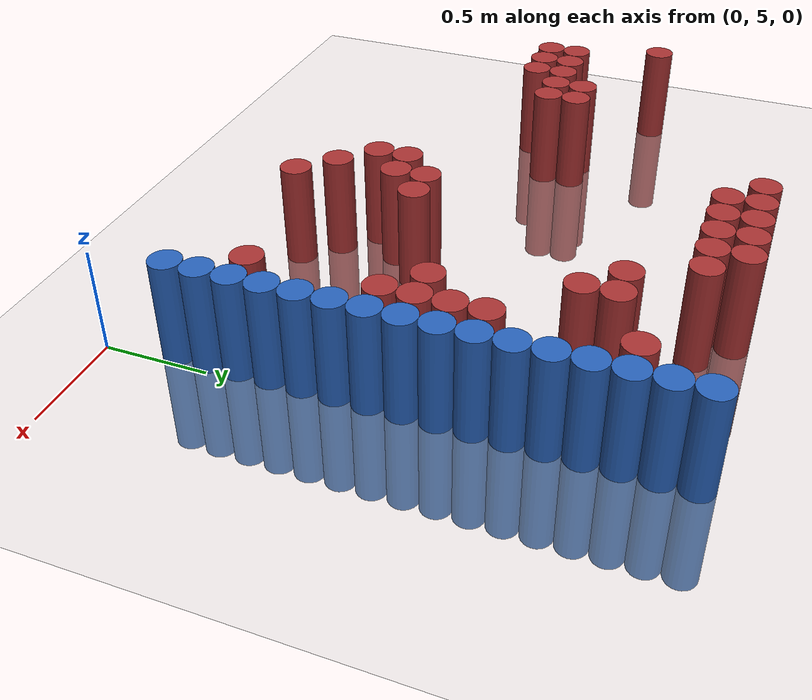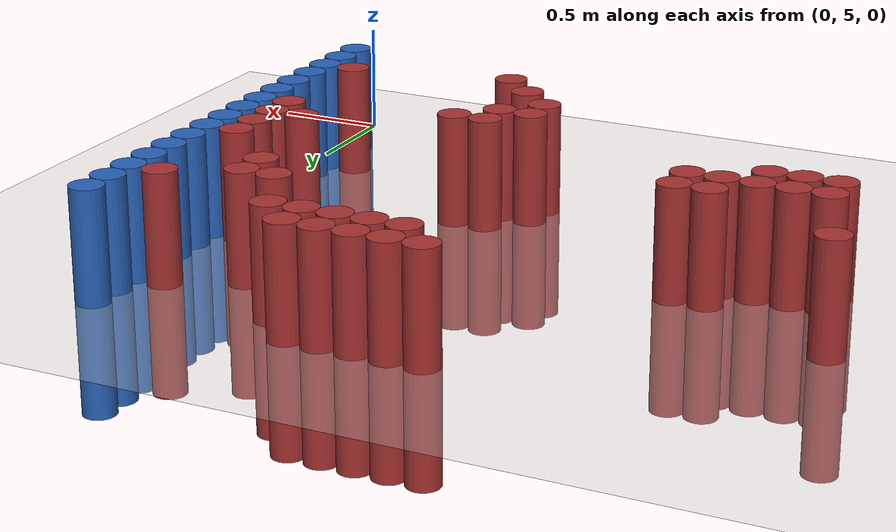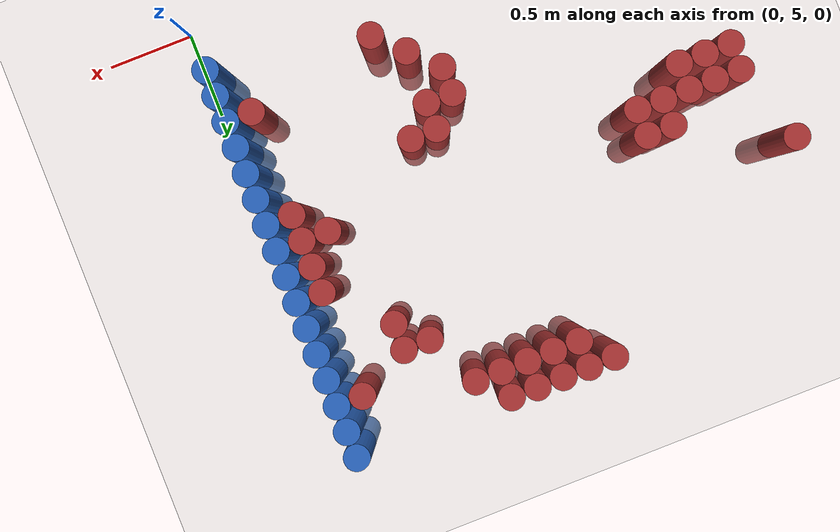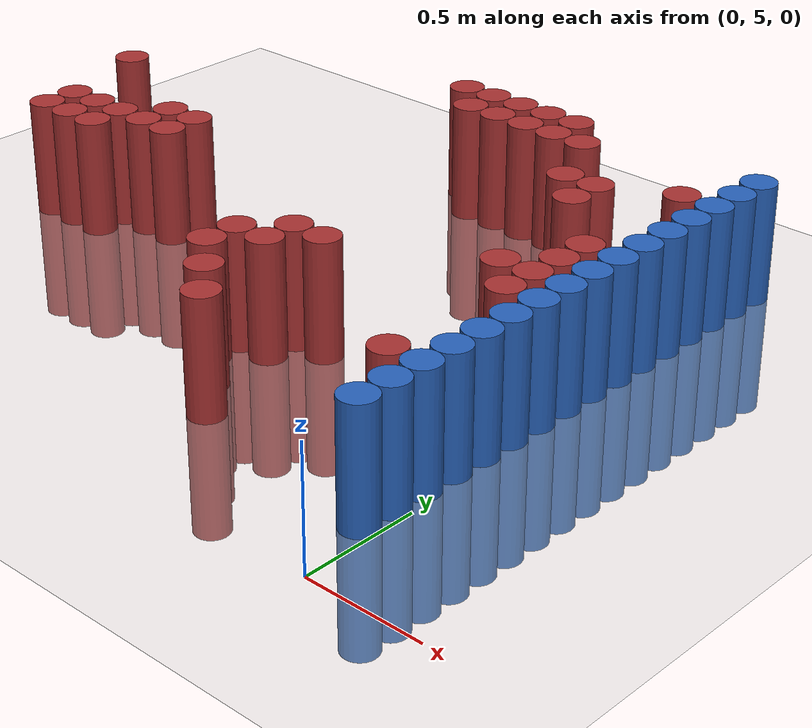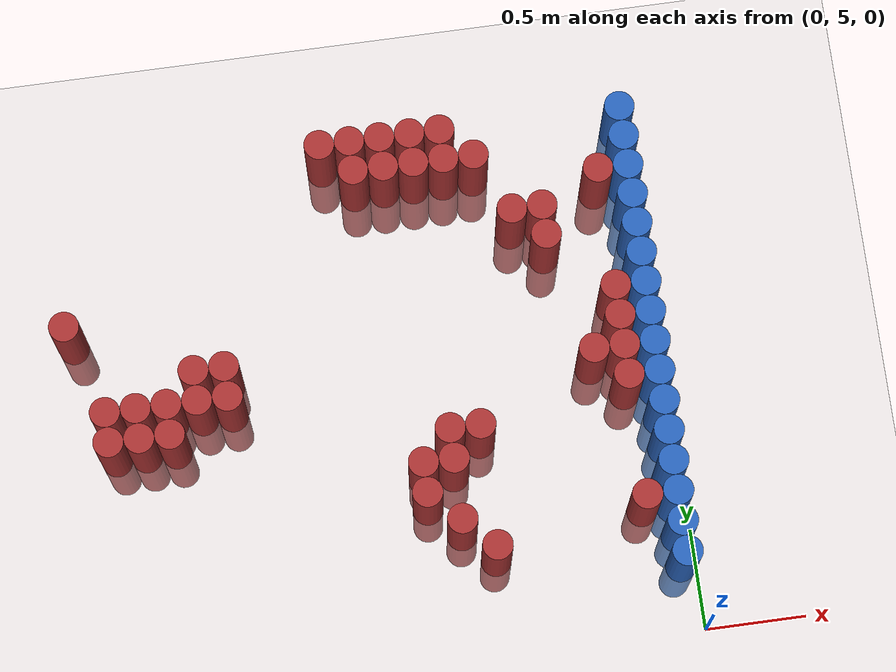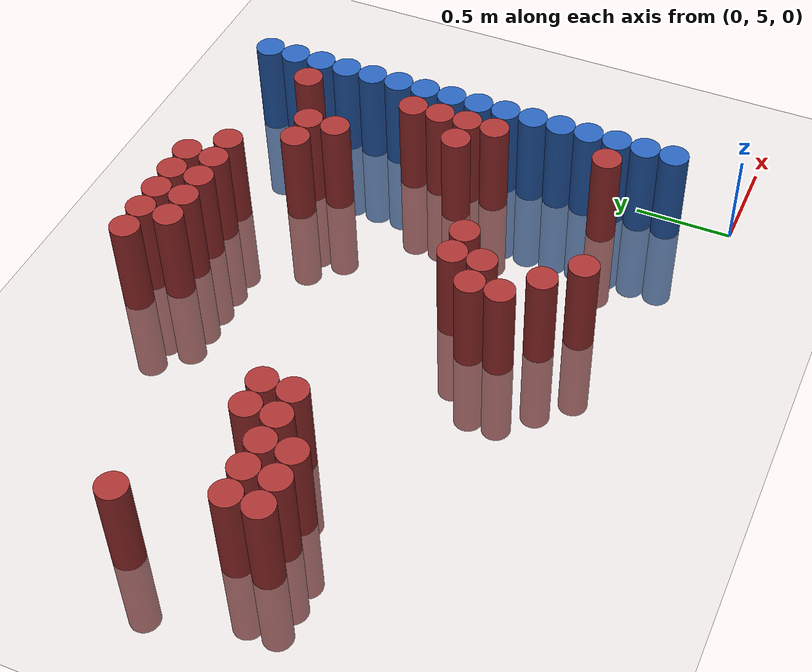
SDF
<sdf version="1.6">
 <world name="default">
  <model name="ground_plane">
   <static>1</static>
   <link name="link">
    <collision name="collision">
     <geometry><plane><normal>0 0 1</normal><size>100 100</size></plane></geometry>
     <surface><friction><ode><mu>100</mu><mu2>50</mu2></ode></friction></surface>
    </collision>
    <visual name="visual">
     <cast_shadows>0</cast_shadows>
     <geometry><plane><normal>0 0 1</normal><size>100 100</size></plane></geometry>
     <material>
      <script><uri>file://media/materials/scripts/gazebo.material</uri><name>Gazebo/Grey</name></script>
     </material>
    </visual>
   </link>
  </model>
  <model name="unit_cylinder_152">
   <static>1</static>
   <pose>-2.925000 6.825000 0.000000 0.000000 0.000000 0.000000</pose>
   <link name="link">
    <inertial>
     <mass>1</mass>
     <inertia><ixx>0.145833</ixx><ixy>0</ixy><ixz>0</ixz><iyy>0.145833</iyy><iyz>0</iyz><izz>0.125</izz></inertia>
    </inertial>
    <collision name="collision">
     <geometry><cylinder><radius>0.075000</radius><length>1</length></cylinder></geometry>
    </collision>
    <visual name="visual">
     <geometry><cylinder><radius>0.075000</radius><length>1</length></cylinder></geometry>
     <material>
      <ambient>0.648000 0.192000 0.192000 1</ambient>
      <diffuse>0.648000 0.192000 0.192000 1</diffuse>
     </material>
     <material>
      <script><name>Gazebo/Grey</name><uri>file://media/materials/scripts/gazebo.material</uri></script>
     </material>
    </visual>
   </link>
  </model>
  <model name="unit_cylinder_156">
   <static>1</static>
   <pose>-2.775000 6.225000 0.000000 0.000000 0.000000 0.000000</pose>
   <link name="link">
    <inertial>
     <mass>1</mass>
     <inertia><ixx>0.145833</ixx><ixy>0</ixy><ixz>0</ixz><iyy>0.145833</iyy><iyz>0</iyz><izz>0.125</izz></inertia>
    </inertial>
    <collision name="collision">
     <geometry><cylinder><radius>0.075000</radius><length>1</length></cylinder></geometry>
    </collision>
    <visual name="visual">
     <geometry><cylinder><radius>0.075000</radius><length>1</length></cylinder></geometry>
     <material>
      <ambient>0.648000 0.192000 0.192000 1</ambient>
      <diffuse>0.648000 0.192000 0.192000 1</diffuse>
     </material>
     <material>
      <script><name>Gazebo/Grey</name><uri>file://media/materials/scripts/gazebo.material</uri></script>
     </material>
    </visual>
   </link>
  </model>
  <model name="unit_cylinder_157">
   <static>1</static>
   <pose>-2.775000 6.375000 0.000000 0.000000 0.000000 0.000000</pose>
   <link name="link">
    <inertial>
     <mass>1</mass>
     <inertia><ixx>0.145833</ixx><ixy>0</ixy><ixz>0</ixz><iyy>0.145833</iyy><iyz>0</iyz><izz>0.125</izz></inertia>
    </inertial>
    <collision name="collision">
     <geometry><cylinder><radius>0.075000</radius><length>1</length></cylinder></geometry>
    </collision>
    <visual name="visual">
     <geometry><cylinder><radius>0.075000</radius><length>1</length></cylinder></geometry>
     <material>
      <ambient>0.648000 0.192000 0.192000 1</ambient>
      <diffuse>0.648000 0.192000 0.192000 1</diffuse>
     </material>
     <material>
      <script><name>Gazebo/Grey</name><uri>file://media/materials/scripts/gazebo.material</uri></script>
     </material>
    </visual>
   </link>
  </model>
  <model name="unit_cylinder_164">
   <static>1</static>
   <pose>-2.625000 6.225000 0.000000 0.000000 0.000000 0.000000</pose>
   <link name="link">
    <inertial>
     <mass>1</mass>
     <inertia><ixx>0.145833</ixx><ixy>0</ixy><ixz>0</ixz><iyy>0.145833</iyy><iyz>0</iyz><izz>0.125</izz></inertia>
    </inertial>
    <collision name="collision">
     <geometry><cylinder><radius>0.075000</radius><length>1</length></cylinder></geometry>
    </collision>
    <visual name="visual">
     <geometry><cylinder><radius>0.075000</radius><length>1</length></cylinder></geometry>
     <material>
      <ambient>0.648000 0.192000 0.192000 1</ambient>
      <diffuse>0.648000 0.192000 0.192000 1</diffuse>
     </material>
     <material>
      <script><name>Gazebo/Grey</name><uri>file://media/materials/scripts/gazebo.material</uri></script>
     </material>
    </visual>
   </link>
  </model>
  <model name="unit_cylinder_165">
   <static>1</static>
   <pose>-2.625000 6.375000 0.000000 0.000000 0.000000 0.000000</pose>
   <link name="link">
    <inertial>
     <mass>1</mass>
     <inertia><ixx>0.145833</ixx><ixy>0</ixy><ixz>0</ixz><iyy>0.145833</iyy><iyz>0</iyz><izz>0.125</izz></inertia>
    </inertial>
    <collision name="collision">
     <geometry><cylinder><radius>0.075000</radius><length>1</length></cylinder></geometry>
    </collision>
    <visual name="visual">
     <geometry><cylinder><radius>0.075000</radius><length>1</length></cylinder></geometry>
     <material>
      <ambient>0.648000 0.192000 0.192000 1</ambient>
      <diffuse>0.648000 0.192000 0.192000 1</diffuse>
     </material>
     <material>
      <script><name>Gazebo/Grey</name><uri>file://media/materials/scripts/gazebo.material</uri></script>
     </material>
    </visual>
   </link>
  </model>
  <model name="unit_cylinder_171">
   <static>1</static>
   <pose>-2.475000 6.225000 0.000000 0.000000 0.000000 0.000000</pose>
   <link name="link">
    <inertial>
     <mass>1</mass>
     <inertia><ixx>0.145833</ixx><ixy>0</ixy><ixz>0</ixz><iyy>0.145833</iyy><iyz>0</iyz><izz>0.125</izz></inertia>
    </inertial>
    <collision name="collision">
     <geometry><cylinder><radius>0.075000</radius><length>1</length></cylinder></geometry>
    </collision>
    <visual name="visual">
     <geometry><cylinder><radius>0.075000</radius><length>1</length></cylinder></geometry>
     <material>
      <ambient>0.648000 0.192000 0.192000 1</ambient>
      <diffuse>0.648000 0.192000 0.192000 1</diffuse>
     </material>
     <material>
      <script><name>Gazebo/Grey</name><uri>file://media/materials/scripts/gazebo.material</uri></script>
     </material>
    </visual>
   </link>
  </model>
  <model name="unit_cylinder_172">
   <static>1</static>
   <pose>-2.475000 6.375000 0.000000 0.000000 0.000000 0.000000</pose>
   <link name="link">
    <inertial>
     <mass>1</mass>
     <inertia><ixx>0.145833</ixx><ixy>0</ixy><ixz>0</ixz><iyy>0.145833</iyy><iyz>0</iyz><izz>0.125</izz></inertia>
    </inertial>
    <collision name="collision">
     <geometry><cylinder><radius>0.075000</radius><length>1</length></cylinder></geometry>
    </collision>
    <visual name="visual">
     <geometry><cylinder><radius>0.075000</radius><length>1</length></cylinder></geometry>
     <material>
      <ambient>0.648000 0.192000 0.192000 1</ambient>
      <diffuse>0.648000 0.192000 0.192000 1</diffuse>
     </material>
     <material>
      <script><name>Gazebo/Grey</name><uri>file://media/materials/scripts/gazebo.material</uri></script>
     </material>
    </visual>
   </link>
  </model>
  <model name="unit_cylinder_175">
   <static>1</static>
   <pose>-2.325000 6.375000 0.000000 0.000000 0.000000 0.000000</pose>
   <link name="link">
    <inertial>
     <mass>1</mass>
     <inertia><ixx>0.145833</ixx><ixy>0</ixy><ixz>0</ixz><iyy>0.145833</iyy><iyz>0</iyz><izz>0.125</izz></inertia>
    </inertial>
    <collision name="collision">
     <geometry><cylinder><radius>0.075000</radius><length>1</length></cylinder></geometry>
    </collision>
    <visual name="visual">
     <geometry><cylinder><radius>0.075000</radius><length>1</length></cylinder></geometry>
     <material>
      <ambient>0.648000 0.192000 0.192000 1</ambient>
      <diffuse>0.648000 0.192000 0.192000 1</diffuse>
     </material>
     <material>
      <script><name>Gazebo/Grey</name><uri>file://media/materials/scripts/gazebo.material</uri></script>
     </material>
    </visual>
   </link>
  </model>
  <model name="unit_cylinder_176">
   <static>1</static>
   <pose>-2.325000 6.525000 0.000000 0.000000 0.000000 0.000000</pose>
   <link name="link">
    <inertial>
     <mass>1</mass>
     <inertia><ixx>0.145833</ixx><ixy>0</ixy><ixz>0</ixz><iyy>0.145833</iyy><iyz>0</iyz><izz>0.125</izz></inertia>
    </inertial>
    <collision name="collision">
     <geometry><cylinder><radius>0.075000</radius><length>1</length></cylinder></geometry>
    </collision>
    <visual name="visual">
     <geometry><cylinder><radius>0.075000</radius><length>1</length></cylinder></geometry>
     <material>
      <ambient>0.648000 0.192000 0.192000 1</ambient>
      <diffuse>0.648000 0.192000 0.192000 1</diffuse>
     </material>
     <material>
      <script><name>Gazebo/Grey</name><uri>file://media/materials/scripts/gazebo.material</uri></script>
     </material>
    </visual>
   </link>
  </model>
  <model name="unit_cylinder_177">
   <static>1</static>
   <pose>-2.175000 6.375000 0.000000 0.000000 0.000000 0.000000</pose>
   <link name="link">
    <inertial>
     <mass>1</mass>
     <inertia><ixx>0.145833</ixx><ixy>0</ixy><ixz>0</ixz><iyy>0.145833</iyy><iyz>0</iyz><izz>0.125</izz></inertia>
    </inertial>
    <collision name="collision">
     <geometry><cylinder><radius>0.075000</radius><length>1</length></cylinder></geometry>
    </collision>
    <visual name="visual">
     <geometry><cylinder><radius>0.075000</radius><length>1</length></cylinder></geometry>
     <material>
      <ambient>0.648000 0.192000 0.192000 1</ambient>
      <diffuse>0.648000 0.192000 0.192000 1</diffuse>
     </material>
     <material>
      <script><name>Gazebo/Grey</name><uri>file://media/materials/scripts/gazebo.material</uri></script>
     </material>
    </visual>
   </link>
  </model>
  <model name="unit_cylinder_178">
   <static>1</static>
   <pose>-2.175000 6.525000 0.000000 0.000000 0.000000 0.000000</pose>
   <link name="link">
    <inertial>
     <mass>1</mass>
     <inertia><ixx>0.145833</ixx><ixy>0</ixy><ixz>0</ixz><iyy>0.145833</iyy><iyz>0</iyz><izz>0.125</izz></inertia>
    </inertial>
    <collision name="collision">
     <geometry><cylinder><radius>0.075000</radius><length>1</length></cylinder></geometry>
    </collision>
    <visual name="visual">
     <geometry><cylinder><radius>0.075000</radius><length>1</length></cylinder></geometry>
     <material>
      <ambient>0.648000 0.192000 0.192000 1</ambient>
      <diffuse>0.648000 0.192000 0.192000 1</diffuse>
     </material>
     <material>
      <script><name>Gazebo/Grey</name><uri>file://media/materials/scripts/gazebo.material</uri></script>
     </material>
    </visual>
   </link>
  </model>
  <model name="unit_cylinder_186">
   <static>1</static>
   <pose>-1.575000 7.575000 0.000000 0.000000 0.000000 0.000000</pose>
   <link name="link">
    <inertial>
     <mass>1</mass>
     <inertia><ixx>0.145833</ixx><ixy>0</ixy><ixz>0</ixz><iyy>0.145833</iyy><iyz>0</iyz><izz>0.125</izz></inertia>
    </inertial>
    <collision name="collision">
     <geometry><cylinder><radius>0.075000</radius><length>1</length></cylinder></geometry>
    </collision>
    <visual name="visual">
     <geometry><cylinder><radius>0.075000</radius><length>1</length></cylinder></geometry>
     <material>
      <ambient>0.648000 0.192000 0.192000 1</ambient>
      <diffuse>0.648000 0.192000 0.192000 1</diffuse>
     </material>
     <material>
      <script><name>Gazebo/Grey</name><uri>file://media/materials/scripts/gazebo.material</uri></script>
     </material>
    </visual>
   </link>
  </model>
  <model name="unit_cylinder_191">
   <static>1</static>
   <pose>-1.425000 7.425000 0.000000 0.000000 0.000000 0.000000</pose>
   <link name="link">
    <inertial>
     <mass>1</mass>
     <inertia><ixx>0.145833</ixx><ixy>0</ixy><ixz>0</ixz><iyy>0.145833</iyy><iyz>0</iyz><izz>0.125</izz></inertia>
    </inertial>
    <collision name="collision">
     <geometry><cylinder><radius>0.075000</radius><length>1</length></cylinder></geometry>
    </collision>
    <visual name="visual">
     <geometry><cylinder><radius>0.075000</radius><length>1</length></cylinder></geometry>
     <material>
      <ambient>0.648000 0.192000 0.192000 1</ambient>
      <diffuse>0.648000 0.192000 0.192000 1</diffuse>
     </material>
     <material>
      <script><name>Gazebo/Grey</name><uri>file://media/materials/scripts/gazebo.material</uri></script>
     </material>
    </visual>
   </link>
  </model>
  <model name="unit_cylinder_192">
   <static>1</static>
   <pose>-1.425000 7.575000 0.000000 0.000000 0.000000 0.000000</pose>
   <link name="link">
    <inertial>
     <mass>1</mass>
     <inertia><ixx>0.145833</ixx><ixy>0</ixy><ixz>0</ixz><iyy>0.145833</iyy><iyz>0</iyz><izz>0.125</izz></inertia>
    </inertial>
    <collision name="collision">
     <geometry><cylinder><radius>0.075000</radius><length>1</length></cylinder></geometry>
    </collision>
    <visual name="visual">
     <geometry><cylinder><radius>0.075000</radius><length>1</length></cylinder></geometry>
     <material>
      <ambient>0.648000 0.192000 0.192000 1</ambient>
      <diffuse>0.648000 0.192000 0.192000 1</diffuse>
     </material>
     <material>
      <script><name>Gazebo/Grey</name><uri>file://media/materials/scripts/gazebo.material</uri></script>
     </material>
    </visual>
   </link>
  </model>
  <model name="unit_cylinder_194">
   <static>1</static>
   <pose>-1.275000 5.775000 0.000000 0.000000 0.000000 0.000000</pose>
   <link name="link">
    <inertial>
     <mass>1</mass>
     <inertia><ixx>0.145833</ixx><ixy>0</ixy><ixz>0</ixz><iyy>0.145833</iyy><iyz>0</iyz><izz>0.125</izz></inertia>
    </inertial>
    <collision name="collision">
     <geometry><cylinder><radius>0.075000</radius><length>1</length></cylinder></geometry>
    </collision>
    <visual name="visual">
     <geometry><cylinder><radius>0.075000</radius><length>1</length></cylinder></geometry>
     <material>
      <ambient>0.648000 0.192000 0.192000 1</ambient>
      <diffuse>0.648000 0.192000 0.192000 1</diffuse>
     </material>
     <material>
      <script><name>Gazebo/Grey</name><uri>file://media/materials/scripts/gazebo.material</uri></script>
     </material>
    </visual>
   </link>
  </model>
  <model name="unit_cylinder_195">
   <static>1</static>
   <pose>-1.275000 5.925000 0.000000 0.000000 0.000000 0.000000</pose>
   <link name="link">
    <inertial>
     <mass>1</mass>
     <inertia><ixx>0.145833</ixx><ixy>0</ixy><ixz>0</ixz><iyy>0.145833</iyy><iyz>0</iyz><izz>0.125</izz></inertia>
    </inertial>
    <collision name="collision">
     <geometry><cylinder><radius>0.075000</radius><length>1</length></cylinder></geometry>
    </collision>
    <visual name="visual">
     <geometry><cylinder><radius>0.075000</radius><length>1</length></cylinder></geometry>
     <material>
      <ambient>0.648000 0.192000 0.192000 1</ambient>
      <diffuse>0.648000 0.192000 0.192000 1</diffuse>
     </material>
     <material>
      <script><name>Gazebo/Grey</name><uri>file://media/materials/scripts/gazebo.material</uri></script>
     </material>
    </visual>
   </link>
  </model>
  <model name="unit_cylinder_196">
   <static>1</static>
   <pose>-1.275000 7.425000 0.000000 0.000000 0.000000 0.000000</pose>
   <link name="link">
    <inertial>
     <mass>1</mass>
     <inertia><ixx>0.145833</ixx><ixy>0</ixy><ixz>0</ixz><iyy>0.145833</iyy><iyz>0</iyz><izz>0.125</izz></inertia>
    </inertial>
    <collision name="collision">
     <geometry><cylinder><radius>0.075000</radius><length>1</length></cylinder></geometry>
    </collision>
    <visual name="visual">
     <geometry><cylinder><radius>0.075000</radius><length>1</length></cylinder></geometry>
     <material>
      <ambient>0.648000 0.192000 0.192000 1</ambient>
      <diffuse>0.648000 0.192000 0.192000 1</diffuse>
     </material>
     <material>
      <script><name>Gazebo/Grey</name><uri>file://media/materials/scripts/gazebo.material</uri></script>
     </material>
    </visual>
   </link>
  </model>
  <model name="unit_cylinder_197">
   <static>1</static>
   <pose>-1.275000 7.575000 0.000000 0.000000 0.000000 0.000000</pose>
   <link name="link">
    <inertial>
     <mass>1</mass>
     <inertia><ixx>0.145833</ixx><ixy>0</ixy><ixz>0</ixz><iyy>0.145833</iyy><iyz>0</iyz><izz>0.125</izz></inertia>
    </inertial>
    <collision name="collision">
     <geometry><cylinder><radius>0.075000</radius><length>1</length></cylinder></geometry>
    </collision>
    <visual name="visual">
     <geometry><cylinder><radius>0.075000</radius><length>1</length></cylinder></geometry>
     <material>
      <ambient>0.648000 0.192000 0.192000 1</ambient>
      <diffuse>0.648000 0.192000 0.192000 1</diffuse>
     </material>
     <material>
      <script><name>Gazebo/Grey</name><uri>file://media/materials/scripts/gazebo.material</uri></script>
     </material>
    </visual>
   </link>
  </model>
  <model name="unit_cylinder_201">
   <static>1</static>
   <pose>-1.125000 5.625000 0.000000 0.000000 0.000000 0.000000</pose>
   <link name="link">
    <inertial>
     <mass>1</mass>
     <inertia><ixx>0.145833</ixx><ixy>0</ixy><ixz>0</ixz><iyy>0.145833</iyy><iyz>0</iyz><izz>0.125</izz></inertia>
    </inertial>
    <collision name="collision">
     <geometry><cylinder><radius>0.075000</radius><length>1</length></cylinder></geometry>
    </collision>
    <visual name="visual">
     <geometry><cylinder><radius>0.075000</radius><length>1</length></cylinder></geometry>
     <material>
      <ambient>0.648000 0.192000 0.192000 1</ambient>
      <diffuse>0.648000 0.192000 0.192000 1</diffuse>
     </material>
     <material>
      <script><name>Gazebo/Grey</name><uri>file://media/materials/scripts/gazebo.material</uri></script>
     </material>
    </visual>
   </link>
  </model>
  <model name="unit_cylinder_202">
   <static>1</static>
   <pose>-1.125000 5.925000 0.000000 0.000000 0.000000 0.000000</pose>
   <link name="link">
    <inertial>
     <mass>1</mass>
     <inertia><ixx>0.145833</ixx><ixy>0</ixy><ixz>0</ixz><iyy>0.145833</iyy><iyz>0</iyz><izz>0.125</izz></inertia>
    </inertial>
    <collision name="collision">
     <geometry><cylinder><radius>0.075000</radius><length>1</length></cylinder></geometry>
    </collision>
    <visual name="visual">
     <geometry><cylinder><radius>0.075000</radius><length>1</length></cylinder></geometry>
     <material>
      <ambient>0.648000 0.192000 0.192000 1</ambient>
      <diffuse>0.648000 0.192000 0.192000 1</diffuse>
     </material>
     <material>
      <script><name>Gazebo/Grey</name><uri>file://media/materials/scripts/gazebo.material</uri></script>
     </material>
    </visual>
   </link>
  </model>
  <model name="unit_cylinder_203">
   <static>1</static>
   <pose>-1.125000 6.075000 0.000000 0.000000 0.000000 0.000000</pose>
   <link name="link">
    <inertial>
     <mass>1</mass>
     <inertia><ixx>0.145833</ixx><ixy>0</ixy><ixz>0</ixz><iyy>0.145833</iyy><iyz>0</iyz><izz>0.125</izz></inertia>
    </inertial>
    <collision name="collision">
     <geometry><cylinder><radius>0.075000</radius><length>1</length></cylinder></geometry>
    </collision>
    <visual name="visual">
     <geometry><cylinder><radius>0.075000</radius><length>1</length></cylinder></geometry>
     <material>
      <ambient>0.648000 0.192000 0.192000 1</ambient>
      <diffuse>0.648000 0.192000 0.192000 1</diffuse>
     </material>
     <material>
      <script><name>Gazebo/Grey</name><uri>file://media/materials/scripts/gazebo.material</uri></script>
     </material>
    </visual>
   </link>
  </model>
  <model name="unit_cylinder_204">
   <static>1</static>
   <pose>-1.125000 7.425000 0.000000 0.000000 0.000000 0.000000</pose>
   <link name="link">
    <inertial>
     <mass>1</mass>
     <inertia><ixx>0.145833</ixx><ixy>0</ixy><ixz>0</ixz><iyy>0.145833</iyy><iyz>0</iyz><izz>0.125</izz></inertia>
    </inertial>
    <collision name="collision">
     <geometry><cylinder><radius>0.075000</radius><length>1</length></cylinder></geometry>
    </collision>
    <visual name="visual">
     <geometry><cylinder><radius>0.075000</radius><length>1</length></cylinder></geometry>
     <material>
      <ambient>0.648000 0.192000 0.192000 1</ambient>
      <diffuse>0.648000 0.192000 0.192000 1</diffuse>
     </material>
     <material>
      <script><name>Gazebo/Grey</name><uri>file://media/materials/scripts/gazebo.material</uri></script>
     </material>
    </visual>
   </link>
  </model>
  <model name="unit_cylinder_205">
   <static>1</static>
   <pose>-1.125000 7.575000 0.000000 0.000000 0.000000 0.000000</pose>
   <link name="link">
    <inertial>
     <mass>1</mass>
     <inertia><ixx>0.145833</ixx><ixy>0</ixy><ixz>0</ixz><iyy>0.145833</iyy><iyz>0</iyz><izz>0.125</izz></inertia>
    </inertial>
    <collision name="collision">
     <geometry><cylinder><radius>0.075000</radius><length>1</length></cylinder></geometry>
    </collision>
    <visual name="visual">
     <geometry><cylinder><radius>0.075000</radius><length>1</length></cylinder></geometry>
     <material>
      <ambient>0.648000 0.192000 0.192000 1</ambient>
      <diffuse>0.648000 0.192000 0.192000 1</diffuse>
     </material>
     <material>
      <script><name>Gazebo/Grey</name><uri>file://media/materials/scripts/gazebo.material</uri></script>
     </material>
    </visual>
   </link>
  </model>
  <model name="unit_cylinder_209">
   <static>1</static>
   <pose>-0.975000 5.475000 0.000000 0.000000 0.000000 0.000000</pose>
   <link name="link">
    <inertial>
     <mass>1</mass>
     <inertia><ixx>0.145833</ixx><ixy>0</ixy><ixz>0</ixz><iyy>0.145833</iyy><iyz>0</iyz><izz>0.125</izz></inertia>
    </inertial>
    <collision name="collision">
     <geometry><cylinder><radius>0.075000</radius><length>1</length></cylinder></geometry>
    </collision>
    <visual name="visual">
     <geometry><cylinder><radius>0.075000</radius><length>1</length></cylinder></geometry>
     <material>
      <ambient>0.648000 0.192000 0.192000 1</ambient>
      <diffuse>0.648000 0.192000 0.192000 1</diffuse>
     </material>
     <material>
      <script><name>Gazebo/Grey</name><uri>file://media/materials/scripts/gazebo.material</uri></script>
     </material>
    </visual>
   </link>
  </model>
  <model name="unit_cylinder_210">
   <static>1</static>
   <pose>-0.975000 6.075000 0.000000 0.000000 0.000000 0.000000</pose>
   <link name="link">
    <inertial>
     <mass>1</mass>
     <inertia><ixx>0.145833</ixx><ixy>0</ixy><ixz>0</ixz><iyy>0.145833</iyy><iyz>0</iyz><izz>0.125</izz></inertia>
    </inertial>
    <collision name="collision">
     <geometry><cylinder><radius>0.075000</radius><length>1</length></cylinder></geometry>
    </collision>
    <visual name="visual">
     <geometry><cylinder><radius>0.075000</radius><length>1</length></cylinder></geometry>
     <material>
      <ambient>0.648000 0.192000 0.192000 1</ambient>
      <diffuse>0.648000 0.192000 0.192000 1</diffuse>
     </material>
     <material>
      <script><name>Gazebo/Grey</name><uri>file://media/materials/scripts/gazebo.material</uri></script>
     </material>
    </visual>
   </link>
  </model>
  <model name="unit_cylinder_211">
   <static>1</static>
   <pose>-0.975000 7.425000 0.000000 0.000000 0.000000 0.000000</pose>
   <link name="link">
    <inertial>
     <mass>1</mass>
     <inertia><ixx>0.145833</ixx><ixy>0</ixy><ixz>0</ixz><iyy>0.145833</iyy><iyz>0</iyz><izz>0.125</izz></inertia>
    </inertial>
    <collision name="collision">
     <geometry><cylinder><radius>0.075000</radius><length>1</length></cylinder></geometry>
    </collision>
    <visual name="visual">
     <geometry><cylinder><radius>0.075000</radius><length>1</length></cylinder></geometry>
     <material>
      <ambient>0.648000 0.192000 0.192000 1</ambient>
      <diffuse>0.648000 0.192000 0.192000 1</diffuse>
     </material>
     <material>
      <script><name>Gazebo/Grey</name><uri>file://media/materials/scripts/gazebo.material</uri></script>
     </material>
    </visual>
   </link>
  </model>
  <model name="unit_cylinder_212">
   <static>1</static>
   <pose>-0.975000 7.575000 0.000000 0.000000 0.000000 0.000000</pose>
   <link name="link">
    <inertial>
     <mass>1</mass>
     <inertia><ixx>0.145833</ixx><ixy>0</ixy><ixz>0</ixz><iyy>0.145833</iyy><iyz>0</iyz><izz>0.125</izz></inertia>
    </inertial>
    <collision name="collision">
     <geometry><cylinder><radius>0.075000</radius><length>1</length></cylinder></geometry>
    </collision>
    <visual name="visual">
     <geometry><cylinder><radius>0.075000</radius><length>1</length></cylinder></geometry>
     <material>
      <ambient>0.648000 0.192000 0.192000 1</ambient>
      <diffuse>0.648000 0.192000 0.192000 1</diffuse>
     </material>
     <material>
      <script><name>Gazebo/Grey</name><uri>file://media/materials/scripts/gazebo.material</uri></script>
     </material>
    </visual>
   </link>
  </model>
  <model name="unit_cylinder_216">
   <static>1</static>
   <pose>-0.825000 7.425000 0.000000 0.000000 0.000000 0.000000</pose>
   <link name="link">
    <inertial>
     <mass>1</mass>
     <inertia><ixx>0.145833</ixx><ixy>0</ixy><ixz>0</ixz><iyy>0.145833</iyy><iyz>0</iyz><izz>0.125</izz></inertia>
    </inertial>
    <collision name="collision">
     <geometry><cylinder><radius>0.075000</radius><length>1</length></cylinder></geometry>
    </collision>
    <visual name="visual">
     <geometry><cylinder><radius>0.075000</radius><length>1</length></cylinder></geometry>
     <material>
      <ambient>0.648000 0.192000 0.192000 1</ambient>
      <diffuse>0.648000 0.192000 0.192000 1</diffuse>
     </material>
     <material>
      <script><name>Gazebo/Grey</name><uri>file://media/materials/scripts/gazebo.material</uri></script>
     </material>
    </visual>
   </link>
  </model>
  <model name="unit_cylinder_220">
   <static>1</static>
   <pose>-0.675000 7.125000 0.000000 0.000000 0.000000 0.000000</pose>
   <link name="link">
    <inertial>
     <mass>1</mass>
     <inertia><ixx>0.145833</ixx><ixy>0</ixy><ixz>0</ixz><iyy>0.145833</iyy><iyz>0</iyz><izz>0.125</izz></inertia>
    </inertial>
    <collision name="collision">
     <geometry><cylinder><radius>0.075000</radius><length>1</length></cylinder></geometry>
    </collision>
    <visual name="visual">
     <geometry><cylinder><radius>0.075000</radius><length>1</length></cylinder></geometry>
     <material>
      <ambient>0.648000 0.192000 0.192000 1</ambient>
      <diffuse>0.648000 0.192000 0.192000 1</diffuse>
     </material>
     <material>
      <script><name>Gazebo/Grey</name><uri>file://media/materials/scripts/gazebo.material</uri></script>
     </material>
    </visual>
   </link>
  </model>
  <model name="unit_cylinder_223">
   <static>1</static>
   <pose>-0.525000 6.975000 0.000000 0.000000 0.000000 0.000000</pose>
   <link name="link">
    <inertial>
     <mass>1</mass>
     <inertia><ixx>0.145833</ixx><ixy>0</ixy><ixz>0</ixz><iyy>0.145833</iyy><iyz>0</iyz><izz>0.125</izz></inertia>
    </inertial>
    <collision name="collision">
     <geometry><cylinder><radius>0.075000</radius><length>1</length></cylinder></geometry>
    </collision>
    <visual name="visual">
     <geometry><cylinder><radius>0.075000</radius><length>1</length></cylinder></geometry>
     <material>
      <ambient>0.648000 0.192000 0.192000 1</ambient>
      <diffuse>0.648000 0.192000 0.192000 1</diffuse>
     </material>
     <material>
      <script><name>Gazebo/Grey</name><uri>file://media/materials/scripts/gazebo.material</uri></script>
     </material>
    </visual>
   </link>
  </model>
  <model name="unit_cylinder_224">
   <static>1</static>
   <pose>-0.525000 7.125000 0.000000 0.000000 0.000000 0.000000</pose>
   <link name="link">
    <inertial>
     <mass>1</mass>
     <inertia><ixx>0.145833</ixx><ixy>0</ixy><ixz>0</ixz><iyy>0.145833</iyy><iyz>0</iyz><izz>0.125</izz></inertia>
    </inertial>
    <collision name="collision">
     <geometry><cylinder><radius>0.075000</radius><length>1</length></cylinder></geometry>
    </collision>
    <visual name="visual">
     <geometry><cylinder><radius>0.075000</radius><length>1</length></cylinder></geometry>
     <material>
      <ambient>0.648000 0.192000 0.192000 1</ambient>
      <diffuse>0.648000 0.192000 0.192000 1</diffuse>
     </material>
     <material>
      <script><name>Gazebo/Grey</name><uri>file://media/materials/scripts/gazebo.material</uri></script>
     </material>
    </visual>
   </link>
  </model>
  <model name="unit_cylinder_227">
   <static>1</static>
   <pose>-0.375000 6.375000 0.000000 0.000000 0.000000 0.000000</pose>
   <link name="link">
    <inertial>
     <mass>1</mass>
     <inertia><ixx>0.145833</ixx><ixy>0</ixy><ixz>0</ixz><iyy>0.145833</iyy><iyz>0</iyz><izz>0.125</izz></inertia>
    </inertial>
    <collision name="collision">
     <geometry><cylinder><radius>0.075000</radius><length>1</length></cylinder></geometry>
    </collision>
    <visual name="visual">
     <geometry><cylinder><radius>0.075000</radius><length>1</length></cylinder></geometry>
     <material>
      <ambient>0.648000 0.192000 0.192000 1</ambient>
      <diffuse>0.648000 0.192000 0.192000 1</diffuse>
     </material>
     <material>
      <script><name>Gazebo/Grey</name><uri>file://media/materials/scripts/gazebo.material</uri></script>
     </material>
    </visual>
   </link>
  </model>
  <model name="unit_cylinder_230">
   <static>1</static>
   <pose>-0.225000 5.625000 0.000000 0.000000 0.000000 0.000000</pose>
   <link name="link">
    <inertial>
     <mass>1</mass>
     <inertia><ixx>0.145833</ixx><ixy>0</ixy><ixz>0</ixz><iyy>0.145833</iyy><iyz>0</iyz><izz>0.125</izz></inertia>
    </inertial>
    <collision name="collision">
     <geometry><cylinder><radius>0.075000</radius><length>1</length></cylinder></geometry>
    </collision>
    <visual name="visual">
     <geometry><cylinder><radius>0.075000</radius><length>1</length></cylinder></geometry>
     <material>
      <ambient>0.648000 0.192000 0.192000 1</ambient>
      <diffuse>0.648000 0.192000 0.192000 1</diffuse>
     </material>
     <material>
      <script><name>Gazebo/Grey</name><uri>file://media/materials/scripts/gazebo.material</uri></script>
     </material>
    </visual>
   </link>
  </model>
  <model name="unit_cylinder_231">
   <static>1</static>
   <pose>-0.225000 6.225000 0.000000 0.000000 0.000000 0.000000</pose>
   <link name="link">
    <inertial>
     <mass>1</mass>
     <inertia><ixx>0.145833</ixx><ixy>0</ixy><ixz>0</ixz><iyy>0.145833</iyy><iyz>0</iyz><izz>0.125</izz></inertia>
    </inertial>
    <collision name="collision">
     <geometry><cylinder><radius>0.075000</radius><length>1</length></cylinder></geometry>
    </collision>
    <visual name="visual">
     <geometry><cylinder><radius>0.075000</radius><length>1</length></cylinder></geometry>
     <material>
      <ambient>0.648000 0.192000 0.192000 1</ambient>
      <diffuse>0.648000 0.192000 0.192000 1</diffuse>
     </material>
     <material>
      <script><name>Gazebo/Grey</name><uri>file://media/materials/scripts/gazebo.material</uri></script>
     </material>
    </visual>
   </link>
  </model>
  <model name="unit_cylinder_232">
   <static>1</static>
   <pose>-0.225000 6.375000 0.000000 0.000000 0.000000 0.000000</pose>
   <link name="link">
    <inertial>
     <mass>1</mass>
     <inertia><ixx>0.145833</ixx><ixy>0</ixy><ixz>0</ixz><iyy>0.145833</iyy><iyz>0</iyz><izz>0.125</izz></inertia>
    </inertial>
    <collision name="collision">
     <geometry><cylinder><radius>0.075000</radius><length>1</length></cylinder></geometry>
    </collision>
    <visual name="visual">
     <geometry><cylinder><radius>0.075000</radius><length>1</length></cylinder></geometry>
     <material>
      <ambient>0.648000 0.192000 0.192000 1</ambient>
      <diffuse>0.648000 0.192000 0.192000 1</diffuse>
     </material>
     <material>
      <script><name>Gazebo/Grey</name><uri>file://media/materials/scripts/gazebo.material</uri></script>
     </material>
    </visual>
   </link>
  </model>
  <model name="unit_cylinder_233">
   <static>1</static>
   <pose>-0.225000 6.525000 0.000000 0.000000 0.000000 0.000000</pose>
   <link name="link">
    <inertial>
     <mass>1</mass>
     <inertia><ixx>0.145833</ixx><ixy>0</ixy><ixz>0</ixz><iyy>0.145833</iyy><iyz>0</iyz><izz>0.125</izz></inertia>
    </inertial>
    <collision name="collision">
     <geometry><cylinder><radius>0.075000</radius><length>1</length></cylinder></geometry>
    </collision>
    <visual name="visual">
     <geometry><cylinder><radius>0.075000</radius><length>1</length></cylinder></geometry>
     <material>
      <ambient>0.648000 0.192000 0.192000 1</ambient>
      <diffuse>0.648000 0.192000 0.192000 1</diffuse>
     </material>
     <material>
      <script><name>Gazebo/Grey</name><uri>file://media/materials/scripts/gazebo.material</uri></script>
     </material>
    </visual>
   </link>
  </model>
  <model name="unit_cylinder_234">
   <static>1</static>
   <pose>-0.225000 6.675000 0.000000 0.000000 0.000000 0.000000</pose>
   <link name="link">
    <inertial>
     <mass>1</mass>
     <inertia><ixx>0.145833</ixx><ixy>0</ixy><ixz>0</ixz><iyy>0.145833</iyy><iyz>0</iyz><izz>0.125</izz></inertia>
    </inertial>
    <collision name="collision">
     <geometry><cylinder><radius>0.075000</radius><length>1</length></cylinder></geometry>
    </collision>
    <visual name="visual">
     <geometry><cylinder><radius>0.075000</radius><length>1</length></cylinder></geometry>
     <material>
      <ambient>0.648000 0.192000 0.192000 1</ambient>
      <diffuse>0.648000 0.192000 0.192000 1</diffuse>
     </material>
     <material>
      <script><name>Gazebo/Grey</name><uri>file://media/materials/scripts/gazebo.material</uri></script>
     </material>
    </visual>
   </link>
  </model>
  <model name="unit_cylinder_235">
   <static>1</static>
   <pose>-0.225000 7.275000 0.000000 0.000000 0.000000 0.000000</pose>
   <link name="link">
    <inertial>
     <mass>1</mass>
     <inertia><ixx>0.145833</ixx><ixy>0</ixy><ixz>0</ixz><iyy>0.145833</iyy><iyz>0</iyz><izz>0.125</izz></inertia>
    </inertial>
    <collision name="collision">
     <geometry><cylinder><radius>0.075000</radius><length>1</length></cylinder></geometry>
    </collision>
    <visual name="visual">
     <geometry><cylinder><radius>0.075000</radius><length>1</length></cylinder></geometry>
     <material>
      <ambient>0.648000 0.192000 0.192000 1</ambient>
      <diffuse>0.648000 0.192000 0.192000 1</diffuse>
     </material>
     <material>
      <script><name>Gazebo/Grey</name><uri>file://media/materials/scripts/gazebo.material</uri></script>
     </material>
    </visual>
   </link>
  </model>
  <model name="unit_cylinder_240">
   <static>1</static>
   <pose>-0.075000 5.325000 0.000000 0.000000 0.000000 0.000000</pose>
   <link name="link">
    <inertial>
     <mass>1</mass>
     <inertia><ixx>0.145833</ixx><ixy>0</ixy><ixz>0</ixz><iyy>0.145833</iyy><iyz>0</iyz><izz>0.125</izz></inertia>
    </inertial>
    <collision name="collision">
     <geometry><cylinder><radius>0.075000</radius><length>1</length></cylinder></geometry>
    </collision>
    <visual name="visual">
     <geometry><cylinder><radius>0.075000</radius><length>1</length></cylinder></geometry>
     <material>
      <ambient>0.152000 0.379000 0.720000 1</ambient>
      <diffuse>0.152000 0.379000 0.720000 1</diffuse>
     </material>
     <material>
      <script><name>Gazebo/Grey</name><uri>file://media/materials/scripts/gazebo.material</uri></script>
     </material>
    </visual>
   </link>
  </model>
  <model name="unit_cylinder_241">
   <static>1</static>
   <pose>-0.075000 5.475000 0.000000 0.000000 0.000000 0.000000</pose>
   <link name="link">
    <inertial>
     <mass>1</mass>
     <inertia><ixx>0.145833</ixx><ixy>0</ixy><ixz>0</ixz><iyy>0.145833</iyy><iyz>0</iyz><izz>0.125</izz></inertia>
    </inertial>
    <collision name="collision">
     <geometry><cylinder><radius>0.075000</radius><length>1</length></cylinder></geometry>
    </collision>
    <visual name="visual">
     <geometry><cylinder><radius>0.075000</radius><length>1</length></cylinder></geometry>
     <material>
      <ambient>0.152000 0.379000 0.720000 1</ambient>
      <diffuse>0.152000 0.379000 0.720000 1</diffuse>
     </material>
     <material>
      <script><name>Gazebo/Grey</name><uri>file://media/materials/scripts/gazebo.material</uri></script>
     </material>
    </visual>
   </link>
  </model>
  <model name="unit_cylinder_242">
   <static>1</static>
   <pose>-0.075000 5.625000 0.000000 0.000000 0.000000 0.000000</pose>
   <link name="link">
    <inertial>
     <mass>1</mass>
     <inertia><ixx>0.145833</ixx><ixy>0</ixy><ixz>0</ixz><iyy>0.145833</iyy><iyz>0</iyz><izz>0.125</izz></inertia>
    </inertial>
    <collision name="collision">
     <geometry><cylinder><radius>0.075000</radius><length>1</length></cylinder></geometry>
    </collision>
    <visual name="visual">
     <geometry><cylinder><radius>0.075000</radius><length>1</length></cylinder></geometry>
     <material>
      <ambient>0.152000 0.379000 0.720000 1</ambient>
      <diffuse>0.152000 0.379000 0.720000 1</diffuse>
     </material>
     <material>
      <script><name>Gazebo/Grey</name><uri>file://media/materials/scripts/gazebo.material</uri></script>
     </material>
    </visual>
   </link>
  </model>
  <model name="unit_cylinder_243">
   <static>1</static>
   <pose>-0.075000 5.775000 0.000000 0.000000 0.000000 0.000000</pose>
   <link name="link">
    <inertial>
     <mass>1</mass>
     <inertia><ixx>0.145833</ixx><ixy>0</ixy><ixz>0</ixz><iyy>0.145833</iyy><iyz>0</iyz><izz>0.125</izz></inertia>
    </inertial>
    <collision name="collision">
     <geometry><cylinder><radius>0.075000</radius><length>1</length></cylinder></geometry>
    </collision>
    <visual name="visual">
     <geometry><cylinder><radius>0.075000</radius><length>1</length></cylinder></geometry>
     <material>
      <ambient>0.152000 0.379000 0.720000 1</ambient>
      <diffuse>0.152000 0.379000 0.720000 1</diffuse>
     </material>
     <material>
      <script><name>Gazebo/Grey</name><uri>file://media/materials/scripts/gazebo.material</uri></script>
     </material>
    </visual>
   </link>
  </model>
  <model name="unit_cylinder_244">
   <static>1</static>
   <pose>-0.075000 5.925000 0.000000 0.000000 0.000000 0.000000</pose>
   <link name="link">
    <inertial>
     <mass>1</mass>
     <inertia><ixx>0.145833</ixx><ixy>0</ixy><ixz>0</ixz><iyy>0.145833</iyy><iyz>0</iyz><izz>0.125</izz></inertia>
    </inertial>
    <collision name="collision">
     <geometry><cylinder><radius>0.075000</radius><length>1</length></cylinder></geometry>
    </collision>
    <visual name="visual">
     <geometry><cylinder><radius>0.075000</radius><length>1</length></cylinder></geometry>
     <material>
      <ambient>0.152000 0.379000 0.720000 1</ambient>
      <diffuse>0.152000 0.379000 0.720000 1</diffuse>
     </material>
     <material>
      <script><name>Gazebo/Grey</name><uri>file://media/materials/scripts/gazebo.material</uri></script>
     </material>
    </visual>
   </link>
  </model>
  <model name="unit_cylinder_245">
   <static>1</static>
   <pose>-0.075000 6.075000 0.000000 0.000000 0.000000 0.000000</pose>
   <link name="link">
    <inertial>
     <mass>1</mass>
     <inertia><ixx>0.145833</ixx><ixy>0</ixy><ixz>0</ixz><iyy>0.145833</iyy><iyz>0</iyz><izz>0.125</izz></inertia>
    </inertial>
    <collision name="collision">
     <geometry><cylinder><radius>0.075000</radius><length>1</length></cylinder></geometry>
    </collision>
    <visual name="visual">
     <geometry><cylinder><radius>0.075000</radius><length>1</length></cylinder></geometry>
     <material>
      <ambient>0.152000 0.379000 0.720000 1</ambient>
      <diffuse>0.152000 0.379000 0.720000 1</diffuse>
     </material>
     <material>
      <script><name>Gazebo/Grey</name><uri>file://media/materials/scripts/gazebo.material</uri></script>
     </material>
    </visual>
   </link>
  </model>
  <model name="unit_cylinder_246">
   <static>1</static>
   <pose>-0.075000 6.225000 0.000000 0.000000 0.000000 0.000000</pose>
   <link name="link">
    <inertial>
     <mass>1</mass>
     <inertia><ixx>0.145833</ixx><ixy>0</ixy><ixz>0</ixz><iyy>0.145833</iyy><iyz>0</iyz><izz>0.125</izz></inertia>
    </inertial>
    <collision name="collision">
     <geometry><cylinder><radius>0.075000</radius><length>1</length></cylinder></geometry>
    </collision>
    <visual name="visual">
     <geometry><cylinder><radius>0.075000</radius><length>1</length></cylinder></geometry>
     <material>
      <ambient>0.152000 0.379000 0.720000 1</ambient>
      <diffuse>0.152000 0.379000 0.720000 1</diffuse>
     </material>
     <material>
      <script><name>Gazebo/Grey</name><uri>file://media/materials/scripts/gazebo.material</uri></script>
     </material>
    </visual>
   </link>
  </model>
  <model name="unit_cylinder_247">
   <static>1</static>
   <pose>-0.075000 6.375000 0.000000 0.000000 0.000000 0.000000</pose>
   <link name="link">
    <inertial>
     <mass>1</mass>
     <inertia><ixx>0.145833</ixx><ixy>0</ixy><ixz>0</ixz><iyy>0.145833</iyy><iyz>0</iyz><izz>0.125</izz></inertia>
    </inertial>
    <collision name="collision">
     <geometry><cylinder><radius>0.075000</radius><length>1</length></cylinder></geometry>
    </collision>
    <visual name="visual">
     <geometry><cylinder><radius>0.075000</radius><length>1</length></cylinder></geometry>
     <material>
      <ambient>0.152000 0.379000 0.720000 1</ambient>
      <diffuse>0.152000 0.379000 0.720000 1</diffuse>
     </material>
     <material>
      <script><name>Gazebo/Grey</name><uri>file://media/materials/scripts/gazebo.material</uri></script>
     </material>
    </visual>
   </link>
  </model>
  <model name="unit_cylinder_248">
   <static>1</static>
   <pose>-0.075000 6.525000 0.000000 0.000000 0.000000 0.000000</pose>
   <link name="link">
    <inertial>
     <mass>1</mass>
     <inertia><ixx>0.145833</ixx><ixy>0</ixy><ixz>0</ixz><iyy>0.145833</iyy><iyz>0</iyz><izz>0.125</izz></inertia>
    </inertial>
    <collision name="collision">
     <geometry><cylinder><radius>0.075000</radius><length>1</length></cylinder></geometry>
    </collision>
    <visual name="visual">
     <geometry><cylinder><radius>0.075000</radius><length>1</length></cylinder></geometry>
     <material>
      <ambient>0.152000 0.379000 0.720000 1</ambient>
      <diffuse>0.152000 0.379000 0.720000 1</diffuse>
     </material>
     <material>
      <script><name>Gazebo/Grey</name><uri>file://media/materials/scripts/gazebo.material</uri></script>
     </material>
    </visual>
   </link>
  </model>
  <model name="unit_cylinder_249">
   <static>1</static>
   <pose>-0.075000 6.675000 0.000000 0.000000 0.000000 0.000000</pose>
   <link name="link">
    <inertial>
     <mass>1</mass>
     <inertia><ixx>0.145833</ixx><ixy>0</ixy><ixz>0</ixz><iyy>0.145833</iyy><iyz>0</iyz><izz>0.125</izz></inertia>
    </inertial>
    <collision name="collision">
     <geometry><cylinder><radius>0.075000</radius><length>1</length></cylinder></geometry>
    </collision>
    <visual name="visual">
     <geometry><cylinder><radius>0.075000</radius><length>1</length></cylinder></geometry>
     <material>
      <ambient>0.152000 0.379000 0.720000 1</ambient>
      <diffuse>0.152000 0.379000 0.720000 1</diffuse>
     </material>
     <material>
      <script><name>Gazebo/Grey</name><uri>file://media/materials/scripts/gazebo.material</uri></script>
     </material>
    </visual>
   </link>
  </model>
  <model name="unit_cylinder_250">
   <static>1</static>
   <pose>-0.075000 6.825000 0.000000 0.000000 0.000000 0.000000</pose>
   <link name="link">
    <inertial>
     <mass>1</mass>
     <inertia><ixx>0.145833</ixx><ixy>0</ixy><ixz>0</ixz><iyy>0.145833</iyy><iyz>0</iyz><izz>0.125</izz></inertia>
    </inertial>
    <collision name="collision">
     <geometry><cylinder><radius>0.075000</radius><length>1</length></cylinder></geometry>
    </collision>
    <visual name="visual">
     <geometry><cylinder><radius>0.075000</radius><length>1</length></cylinder></geometry>
     <material>
      <ambient>0.152000 0.379000 0.720000 1</ambient>
      <diffuse>0.152000 0.379000 0.720000 1</diffuse>
     </material>
     <material>
      <script><name>Gazebo/Grey</name><uri>file://media/materials/scripts/gazebo.material</uri></script>
     </material>
    </visual>
   </link>
  </model>
  <model name="unit_cylinder_251">
   <static>1</static>
   <pose>-0.075000 6.975000 0.000000 0.000000 0.000000 0.000000</pose>
   <link name="link">
    <inertial>
     <mass>1</mass>
     <inertia><ixx>0.145833</ixx><ixy>0</ixy><ixz>0</ixz><iyy>0.145833</iyy><iyz>0</iyz><izz>0.125</izz></inertia>
    </inertial>
    <collision name="collision">
     <geometry><cylinder><radius>0.075000</radius><length>1</length></cylinder></geometry>
    </collision>
    <visual name="visual">
     <geometry><cylinder><radius>0.075000</radius><length>1</length></cylinder></geometry>
     <material>
      <ambient>0.152000 0.379000 0.720000 1</ambient>
      <diffuse>0.152000 0.379000 0.720000 1</diffuse>
     </material>
     <material>
      <script><name>Gazebo/Grey</name><uri>file://media/materials/scripts/gazebo.material</uri></script>
     </material>
    </visual>
   </link>
  </model>
  <model name="unit_cylinder_252">
   <static>1</static>
   <pose>-0.075000 7.125000 0.000000 0.000000 0.000000 0.000000</pose>
   <link name="link">
    <inertial>
     <mass>1</mass>
     <inertia><ixx>0.145833</ixx><ixy>0</ixy><ixz>0</ixz><iyy>0.145833</iyy><iyz>0</iyz><izz>0.125</izz></inertia>
    </inertial>
    <collision name="collision">
     <geometry><cylinder><radius>0.075000</radius><length>1</length></cylinder></geometry>
    </collision>
    <visual name="visual">
     <geometry><cylinder><radius>0.075000</radius><length>1</length></cylinder></geometry>
     <material>
      <ambient>0.152000 0.379000 0.720000 1</ambient>
      <diffuse>0.152000 0.379000 0.720000 1</diffuse>
     </material>
     <material>
      <script><name>Gazebo/Grey</name><uri>file://media/materials/scripts/gazebo.material</uri></script>
     </material>
    </visual>
   </link>
  </model>
  <model name="unit_cylinder_253">
   <static>1</static>
   <pose>-0.075000 7.275000 0.000000 0.000000 0.000000 0.000000</pose>
   <link name="link">
    <inertial>
     <mass>1</mass>
     <inertia><ixx>0.145833</ixx><ixy>0</ixy><ixz>0</ixz><iyy>0.145833</iyy><iyz>0</iyz><izz>0.125</izz></inertia>
    </inertial>
    <collision name="collision">
     <geometry><cylinder><radius>0.075000</radius><length>1</length></cylinder></geometry>
    </collision>
    <visual name="visual">
     <geometry><cylinder><radius>0.075000</radius><length>1</length></cylinder></geometry>
     <material>
      <ambient>0.152000 0.379000 0.720000 1</ambient>
      <diffuse>0.152000 0.379000 0.720000 1</diffuse>
     </material>
     <material>
      <script><name>Gazebo/Grey</name><uri>file://media/materials/scripts/gazebo.material</uri></script>
     </material>
    </visual>
   </link>
  </model>
  <model name="unit_cylinder_254">
   <static>1</static>
   <pose>-0.075000 7.425000 0.000000 0.000000 0.000000 0.000000</pose>
   <link name="link">
    <inertial>
     <mass>1</mass>
     <inertia><ixx>0.145833</ixx><ixy>0</ixy><ixz>0</ixz><iyy>0.145833</iyy><iyz>0</iyz><izz>0.125</izz></inertia>
    </inertial>
    <collision name="collision">
     <geometry><cylinder><radius>0.075000</radius><length>1</length></cylinder></geometry>
    </collision>
    <visual name="visual">
     <geometry><cylinder><radius>0.075000</radius><length>1</length></cylinder></geometry>
     <material>
      <ambient>0.152000 0.379000 0.720000 1</ambient>
      <diffuse>0.152000 0.379000 0.720000 1</diffuse>
     </material>
     <material>
      <script><name>Gazebo/Grey</name><uri>file://media/materials/scripts/gazebo.material</uri></script>
     </material>
    </visual>
   </link>
  </model>
  <model name="unit_cylinder_255">
   <static>1</static>
   <pose>-0.075000 7.575000 0.000000 0.000000 0.000000 0.000000</pose>
   <link name="link">
    <inertial>
     <mass>1</mass>
     <inertia><ixx>0.145833</ixx><ixy>0</ixy><ixz>0</ixz><iyy>0.145833</iyy><iyz>0</iyz><izz>0.125</izz></inertia>
    </inertial>
    <collision name="collision">
     <geometry><cylinder><radius>0.075000</radius><length>1</length></cylinder></geometry>
    </collision>
    <visual name="visual">
     <geometry><cylinder><radius>0.075000</radius><length>1</length></cylinder></geometry>
     <material>
      <ambient>0.152000 0.379000 0.720000 1</ambient>
      <diffuse>0.152000 0.379000 0.720000 1</diffuse>
     </material>
     <material>
      <script><name>Gazebo/Grey</name><uri>file://media/materials/scripts/gazebo.material</uri></script>
     </material>
    </visual>
   </link>
  </model>
 </world>
</sdf>
